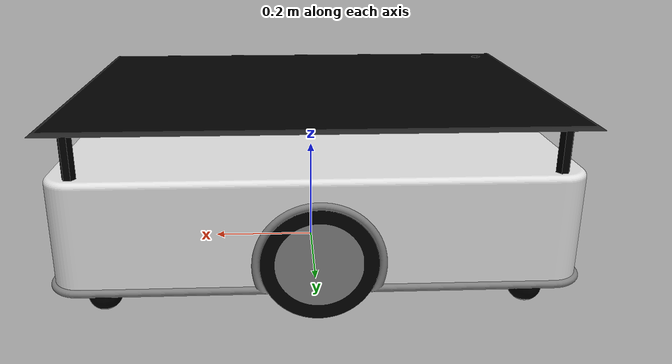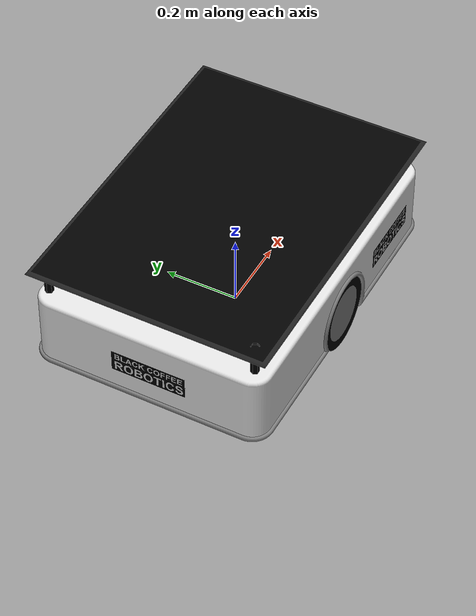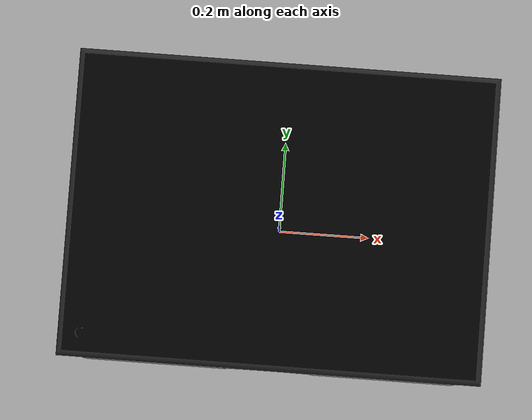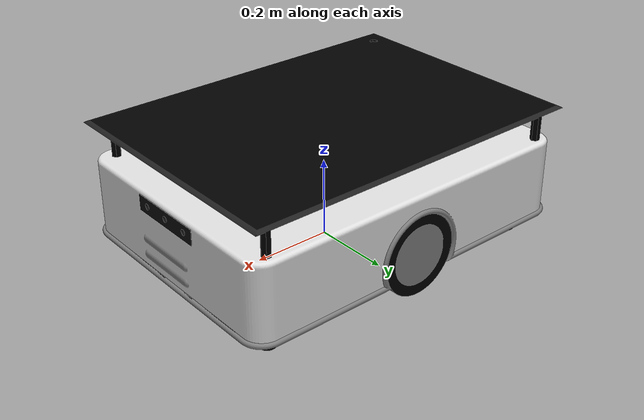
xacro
<?xml version="1.0"?>
<robot xmlns:xacro="http://www.ros.org/wiki/xacro" name="bcr_bot">

    <!--................................ XACRO CONSTANTS .............................. -->

    <xacro:property name="chassis_mass" value="70"/>
    <xacro:property name="chassis_length" value="0.9"/>
    <xacro:property name="chassis_width" value="0.64"/>
    <xacro:property name="chassis_height" value="0.19"/>

    <xacro:property name="traction_wheel_mass" value="1"/>
    <xacro:property name="traction_wheel_base" value="0.88"/>
    <xacro:property name="traction_max_wheel_torque" value="20000"/>
    <xacro:property name="traction_wheel_friction" value="5.0"/>

    <xacro:property name="trolley_wheel_mass" value="0.1"/>
    <xacro:property name="trolley_track_width" value="0.54"/>
    <xacro:property name="trolley_wheel_friction" value="0.0"/>
    <xacro:property name="trolley_wheel_radius" value="0.06"/>
    <!-- a small constant -->
    <xacro:property name="eps" value="0.002"/>

    <xacro:property name="traction_wheel_radius" value="0.1"/>
    <xacro:property name="traction_wheel_width" value="0.05"/>
    <xacro:property name="traction_track_width" value="0.6"/>

    <xacro:property name="two_d_lidar_update_rate" value="30"/>
    <xacro:property name="two_d_lidar_sample_size" value="361"/>
    <xacro:property name="two_d_lidar_min_angle" value="0"/>
    <xacro:property name="two_d_lidar_max_angle" value="360"/>
    <xacro:property name="two_d_lidar_min_range" value="0.55"/>
    <xacro:property name="two_d_lidar_max_range" value="16"/>

    <xacro:property name="lift_stroke" value="0.08"/>
    <xacro:property name="lift_mass" value="2.0"/>
    <xacro:property name="lift_force_max" value="1000"/>
    <xacro:property name="lift_effort" value="2000"/>
    <xacro:property name="lift_damping" value="500"/>
    <xacro:property name="lift_joint_velocity_limit" value="1.0"/>
    <!-- High friction on the plate so the cart does not slide when braking or turning. -->
    <xacro:property name="lift_friction" value="1000"/>
    <xacro:property name="lift_plate_z" value="0.132"/>
    <xacro:property name="lift_block_height" value="0.085"/>

    <xacro:property name="camera_baseline" value="0.06"/>
    <xacro:property name="camera_height" value="0.10"/>
    <xacro:property name="camera_horizontal_fov" value="60"/>

    <xacro:arg name="robot_namespace" default=""/>
    <xacro:arg name="wheel_odom_topic" default="odom" />
    <xacro:arg name="camera_enabled" default="false" />
    <xacro:arg name="stereo_camera_enabled" default="false" />
    <xacro:arg name="two_d_lidar_enabled" default="false" />
    <xacro:arg name="publish_wheel_odom_tf" default="true" />
    <xacro:arg name="conveyor_enabled" default="false"/>
    <xacro:arg name="ground_truth_frame" default="map"/>
    <xacro:arg name="sim_gz" default="false" />
    <xacro:arg name="sim_mujoco" default="false" />
    <!-- Dibujar los rayos del lidar en la GUI de Gazebo (upstream usa false; mas barato con varios robots) -->
    <xacro:arg name="lidar_visualize" default="true" />
    <xacro:arg name="odometry_source" default="world" />

    <xacro:property name="odometry_source" value="$(arg odometry_source)"/>
    <xacro:property name="robot_namespace" value="$(arg robot_namespace)"/>
    <xacro:property name="prefix" value="${robot_namespace + '/' if robot_namespace else ''}"/>

    <!-- ............................... LOAD MACROS ................................. -->

    <xacro:include filename="$(find bcr_bot)/urdf/materials.xacro"/>
    <xacro:include filename="$(find bcr_bot)/urdf/macros.xacro"/>

    <xacro:if value="$(arg sim_gz)">
        <xacro:include filename="$(find bcr_bot)/urdf/gz.xacro"/>
    </xacro:if>

    <xacro:if value="$(arg sim_mujoco)">
        <xacro:include filename="$(find bcr_bot)/urdf/mujoco_ros2_control.xacro"/>
    </xacro:if>

    <!-- ................................ BASE LINK .................................. -->
    <link name="${prefix}base_footprint"/>

    <link name="${prefix}base_link"/>

    <joint name="${prefix}base_joint" type="fixed">
        <parent link="${prefix}base_footprint"/>
        <child link="${prefix}base_link"/>
        <origin xyz="0.0 0 ${chassis_height/2 + traction_wheel_radius}" rpy="0 0 0.0" />
    </joint>

    <link name="${prefix}chassis_link">

        <collision>
            <origin xyz="0 0 -0.05" rpy="0 0 0" />
            <geometry>
                <box size="${chassis_length} ${chassis_width} ${chassis_height}"/>
            </geometry>
        </collision>

        <visual>
            <origin xyz="0 0 -0.205" rpy="0 0 0" />
            <geometry>
                <!-- Body only; the top block is the visual of lift_link. -->
                <mesh filename="file://$(find bcr_bot)/meshes/bcr_bot_body.dae" scale="1 1 1"/>
            </geometry>
        </visual>

        <inertial>
            <mass value="${chassis_mass}" />
            <xacro:box_inertia m="${chassis_mass}" x="${chassis_length}" y="${chassis_width}" z = "${chassis_height}"/>
        </inertial>

    </link>

    <joint name="${prefix}chassis_joint" type="fixed">
        <parent link="${prefix}base_link"/>
        <child link="${prefix}chassis_link"/>
        <origin xyz="0.0 0 0" rpy="0 0 0.0" />
    </joint>

    <!-- ................................ WHEELS ..................................... -->

    <xacro:trolley_wheel cardinality="front" dexterity="left" origin_x="${chassis_length/2}" origin_y="${trolley_track_width/2}" origin_z="-${trolley_wheel_radius+chassis_height/2}" prefix="${prefix}"/>
    <xacro:trolley_wheel cardinality="front" dexterity="right" origin_x="${chassis_length/2}" origin_y="-${trolley_track_width/2}" origin_z="-${trolley_wheel_radius+chassis_height/2}" prefix="${prefix}"/>

    <xacro:trolley_wheel cardinality="back" dexterity="left" origin_x="-${chassis_length/2}" origin_y="${trolley_track_width/2}" origin_z="-${trolley_wheel_radius+chassis_height/2}" prefix="${prefix}"/>
    <xacro:trolley_wheel cardinality="back" dexterity="right" origin_x="-${chassis_length/2}" origin_y="-${trolley_track_width/2}" origin_z="-${trolley_wheel_radius+chassis_height/2}" prefix="${prefix}"/>

    <xacro:traction_wheel cardinality="middle" dexterity="left" origin_x="0" origin_y="${traction_track_width/2}" origin_z="-${chassis_height/2+2*trolley_wheel_radius+eps-traction_wheel_radius}" prefix="${prefix}"/>
    <xacro:traction_wheel cardinality="middle" dexterity="right" origin_x="0" origin_y="-${traction_track_width/2}" origin_z="-${chassis_height/2+2*trolley_wheel_radius+eps-traction_wheel_radius}" prefix="${prefix}"/>

    <!-- ............................. 2D LIDAR ........................................ -->

    <xacro:if value="$(arg two_d_lidar_enabled)">

        <link name="${prefix}two_d_lidar">
            <collision>
                <origin xyz="0 0 0" rpy="0 0 0" />
                <geometry>
                    <cylinder length="0.06" radius="0.075"/>
                </geometry>
            </collision>

            <visual>
                <origin xyz="0 0 0" rpy="0 0 0" />
                <geometry>
                    <cylinder length="0.06" radius="0.075"/>
                </geometry>
                <material name="aluminium"/>
            </visual>

            <inertial>
                <origin xyz="0 0 0" rpy="0 0 0" />
                <mass value="0.1"/>
                <xacro:cylinder_inertia m="0.1" r="0.075" h="0.06"/>
            </inertial>
        </link>

        <joint name="${prefix}two_d_lidar_joint" type="fixed">
            <parent link="${prefix}base_link"/>
            <child link="${prefix}two_d_lidar"/>
            <origin xyz="0.0 0 0.08" rpy="0 0 0" />
        </joint>

        <gazebo reference="${prefix}two_d_lidar">
            <material>Gazebo/White</material>
        </gazebo>

    </xacro:if>

    <!-- ............................. IMU ........................................ -->

    <link name="${prefix}imu_frame"/>

    <joint name="${prefix}imu_joint" type="fixed">
        <parent link="${prefix}base_link"/>
        <child link="${prefix}imu_frame"/>
        <origin xyz="0.0 0.0 0.08" rpy="0.0 0.0 0.0"/>
    </joint>

    <!-- ............................. CAMERA ........................................ -->

    <xacro:if value="$(arg camera_enabled)">

        <!-- KINECT CAMERA -->

        <link name="${prefix}kinect_camera">

            <collision>
                <origin xyz="0 0 0" rpy="0 0 0" />
                <geometry>
                    <box size="0.07 0.3 0.09"/>
                </geometry>
            </collision>

            <visual>
                <origin xyz="0 0 0" rpy="0 0 0" />
                <geometry>
                    <mesh filename="file://$(find bcr_bot)/meshes/kinect/d415.dae"/>
                </geometry>
                <material name="black"/>
            </visual>

            <inertial>
                <mass value="0.01"/>
                <xacro:box_inertia m="0.01" x="0.07" y="0.3" z = "0.09"/>
            </inertial>

        </link>

        <joint name="${prefix}kinect_camera_joint" type="fixed">
            <origin rpy="0 0 0" xyz="${chassis_length/2} 0 ${chassis_height/7}"/>
            <parent link="${prefix}base_link"/>
            <child link="${prefix}kinect_camera"/>
        </joint>

        <link name="${prefix}kinect_camera_optical"/>

        <joint name="${prefix}kinect_camera_optical_joint" type="fixed">
            <origin xyz="0 0 0" rpy="${-pi/2} 0 ${-pi/2}"/>
            <parent link="${prefix}kinect_camera"/>
            <child link="${prefix}kinect_camera_optical"/>
        </joint>

    </xacro:if>

    <!-- .............................STEREO CAMERA ........................................ -->

    <xacro:if value="$(arg stereo_camera_enabled)">

        <!-- STEREO CAMERA -->

        <link name="${prefix}stereo_camera">

            <collision>
                <origin xyz="0 0 0" rpy="0 0 0" />
                <geometry>
                    <box size="0.07 0.3 0.09"/>
                </geometry>
            </collision>

            <visual>
                <origin xyz="0 0 0" rpy="0 0 0" />
                <geometry>
                    <mesh filename="file://$(find bcr_bot)/meshes/kinect/d415.dae"/>
                </geometry>
                <material name="black"/>
            </visual>

            <inertial>
                <mass value="0.01"/>
                <xacro:box_inertia m="0.01" x="0.07" y="0.3" z = "0.09"/>
            </inertial>

        </link>

        <joint name="${prefix}stereo_camera_joint" type="fixed">
            <origin rpy="0 0 0" xyz="${chassis_length/2} 0 ${chassis_height/7}"/>
            <parent link="${prefix}base_link"/>
            <child link="${prefix}stereo_camera"/>
        </joint>

        <link name="${prefix}stereo_camera_optical"/>

        <joint name="${prefix}stereo_camera_optical_joint" type="fixed">
            <origin xyz="0 0 0" rpy="${-pi/2} 0 ${-pi/2}"/>
            <parent link="${prefix}stereo_camera"/>
            <child link="${prefix}stereo_camera_optical"/>
        </joint>

    </xacro:if>

    <!-- ............................. LIFT PLATFORM ................................ -->

    <!-- Frame on the top surface of the plate (what touches the cart). -->
    <link name="${prefix}lift_link">

        <collision>
            <origin xyz="0 0 ${-lift_block_height/2}" rpy="0 0 0" />
            <geometry>
                <box size="${chassis_length} ${chassis_width} ${lift_block_height}"/>
            </geometry>
        </collision>

        <visual>
            <!-- Same mesh frame as chassis_link's visual (-0.205), seen from the plate top. -->
            <origin xyz="0 0 ${-0.205 - lift_plate_z}" rpy="0 0 0" />
            <geometry>
                <mesh filename="file://$(find bcr_bot)/meshes/bcr_bot_top.dae" scale="1 1 1"/>
            </geometry>
        </visual>

        <inertial>
            <origin xyz="0 0 ${-lift_block_height/2}" rpy="0 0 0" />
            <mass value="${lift_mass}"/>
            <xacro:box_inertia m="${lift_mass}" x="${chassis_length}" y="${chassis_width}" z="${lift_block_height}"/>
        </inertial>

    </link>

    <joint name="${prefix}lift_joint" type="prismatic">
        <parent link="${prefix}chassis_link"/>
        <child link="${prefix}lift_link"/>
        <origin xyz="0 0 ${lift_plate_z}" rpy="0 0 0" />
        <axis xyz="0 0 1"/>
        <limit lower="0.0" upper="${lift_stroke}" effort="${lift_effort}" velocity="${lift_joint_velocity_limit}"/>
        <dynamics damping="${lift_damping}" friction="0.0"/>
    </joint>

    <!-- ............................. CONVEYOR ........................................ -->

    <xacro:if value="$(arg conveyor_enabled)">

        <link name="${prefix}conveyor_belt">

            <collision>
                <origin xyz="0 0 0" rpy="0 0 0" />
                <geometry>
                    <box size="1 0.6 0.015"/>
                </geometry>
            </collision>

            <visual>
                <origin xyz="0 0 0" rpy="0 0 0"/>
                <geometry>
                    <box size="1 0.6 0.015"/>
                </geometry>
            </visual>

            <inertial>
                <mass value="1"/>
                <xacro:box_inertia m="1" x="1" y="0.6" z = "0.015"/>
            </inertial>

        </link>

        <joint name="${prefix}conveyor_joint" type="fixed">
            <parent link="${prefix}base_link"/>
            <child link="${prefix}conveyor_belt"/>
            <origin xyz="0 0 0.25" rpy="0 0 0" />
        </joint>

    </xacro:if>

</robot>

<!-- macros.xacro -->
<robot xmlns:xacro="http://www.ros.org/wiki/xacro" name="bcr_bot">

    <!--................................ INERTIA MATRICES .............................. -->

    <xacro:macro name="cylinder_inertia" params="m r h">
        <inertia ixx="${m * (3 * r * r + h * h) / 12}" ixy="0" ixz="0" iyy="${m * (3 * r * r + h * h) / 12}" iyz="0" izz="${m * r * r / 2}" />
    </xacro:macro>

    <xacro:macro name="box_inertia" params="m x y z">
        <inertia ixx="${m * (y * y + z * z) / 12}" ixy="0" ixz="0" iyy="${m * (x * x + z * z) / 12}" iyz="0" izz="${m * (y * y + x * x) / 12}" />
    </xacro:macro>

    <xacro:macro name="sphere_inertia" params="m r">
        <inertia ixx="${2 * m * r * r / 5}" ixy="0" ixz="0" iyy="${2 * m * r * r / 5}" iyz="0" izz="${2 * m * r * r / 5}" />
    </xacro:macro>

    <!-- ............................... TROLLEY WHEEL DEFINITION .............................. -->

    <xacro:macro name="trolley_wheel" params="cardinality dexterity origin_x origin_y origin_z prefix:=''">
        <link name="${prefix}${cardinality}_${dexterity}_wheel">
            <collision>
                <origin xyz="0 0 0" rpy="0 ${pi/2} ${pi/2}" />
                <geometry>
                    <sphere radius="${trolley_wheel_radius}"/>
                </geometry>
            </collision>

            <inertial>
                <origin xyz="0 0 0" rpy="0 0 0" />
                <mass value="${trolley_wheel_mass}"/>
                <xacro:sphere_inertia m="${trolley_wheel_mass}" r="${trolley_wheel_radius}"/>
            </inertial>

            <mu>0.0</mu>
        </link>

        <joint name="${prefix}${cardinality}_${dexterity}_wheel_joint" type="fixed">
            <parent link="${prefix}base_link"/>
            <child link="${prefix}${cardinality}_${dexterity}_wheel"/>
            <origin xyz="${origin_x} ${origin_y} ${origin_z}" rpy="0 0 0" />
            <axis xyz="0 1 0" rpy="0 0 0" />
        </joint>

        <gazebo reference="${prefix}${cardinality}_${dexterity}_wheel">
            <material>Gazebo/Black</material>
        </gazebo>
    </xacro:macro>

    <xacro:macro name="traction_wheel" params="cardinality dexterity origin_x origin_y origin_z prefix:=''">
        <link name="${prefix}${cardinality}_${dexterity}_wheel">
            <collision>
                <origin xyz="0 0 0" rpy="0 ${pi/2} ${pi/2}" />
                <geometry>
                    <cylinder length="${traction_wheel_width}" radius="${traction_wheel_radius}"/>
                </geometry>
                <self_collide>false</self_collide>
            </collision>

            <inertial>
                <origin xyz="0 0 0" rpy="0 ${pi/2} ${pi/2}" />
                <mass value="${traction_wheel_mass}"/>
                <xacro:cylinder_inertia m="${traction_wheel_mass}" r="${traction_wheel_radius}" h="${traction_wheel_width}"/>
            </inertial>

            <mu>5.0</mu>
        </link>

        <joint name="${prefix}${cardinality}_${dexterity}_wheel_joint" type="continuous">
            <parent link="${prefix}base_link"/>
            <child link="${prefix}${cardinality}_${dexterity}_wheel"/>
            <origin xyz="${origin_x} ${origin_y} ${origin_z}" rpy="0 0 0" />
            <axis xyz="0 1 0" rpy="0 0 0" />
        </joint>

        <gazebo reference="${prefix}${cardinality}_${dexterity}_wheel">
            <material>Gazebo/Black</material>
        </gazebo>
    </xacro:macro>

</robot>
